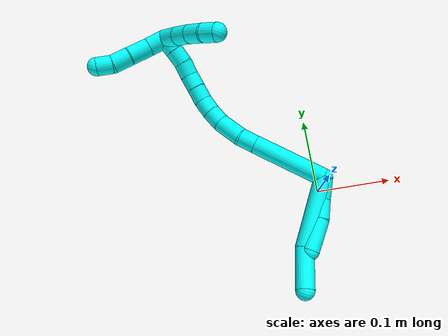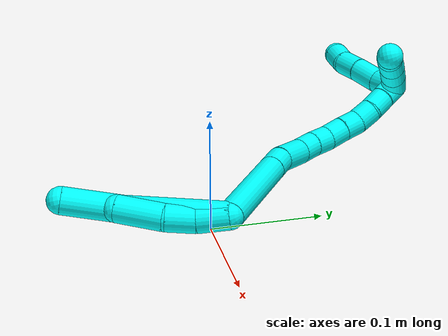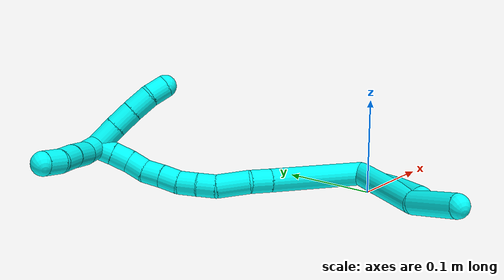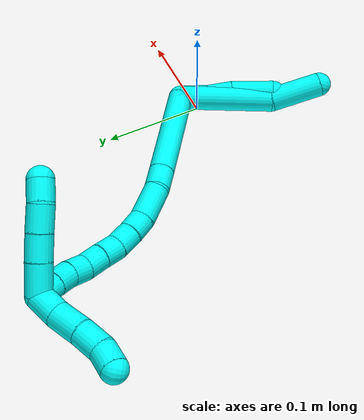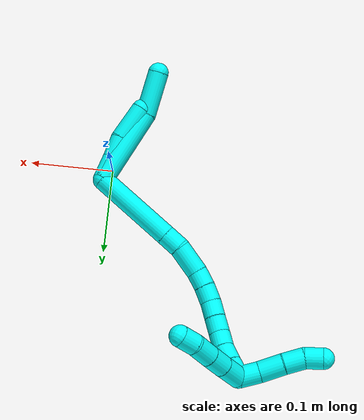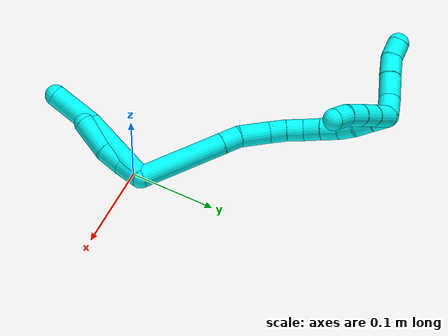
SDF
<sdf version="1.7">
 <world name="default">
  <model name="3">
   <static>0</static>
   <link name="3">
    <collision name="collision-cylinder-e_1_2_8">
     <pose>-0.013992 -0.002197 -0.046233 3.09411 -0.293578 -2.8231</pose>
     <geometry><cylinder><radius>0.0125</radius><length>0.096707</length></cylinder></geometry>
     <surface>
      <friction><ode><mu>1.16</mu><mu2>1.16</mu2><slip1>0</slip1><slip2>0</slip2></ode></friction>
      <contact><ode><kp>1e+06</kp><kd>1</kd><max_vel>0</max_vel><min_depth>0.001</min_depth></ode></contact>
     </surface>
    </collision>
    <visual name="visual-cylinder-e_1_2_8">
     <pose>-0.013992 -0.002197 -0.046233 3.09411 -0.293578 -2.8231</pose>
     <geometry><cylinder><radius>0.0125</radius><length>0.096707</length></cylinder></geometry>
     <material><ambient>0.003922 1 0.996078 1</ambient></material>
    </visual>
    <collision name="collision-cylinder-e_2_8_6">
     <pose>-0.040153 -0.012588 -0.11471 2.78867 -0.474202 -1.87014</pose>
     <geometry><cylinder><radius>0.0125</radius><length>0.053293</length></cylinder></geometry>
     <surface>
      <friction><ode><mu>1.16</mu><mu2>1.16</mu2><slip1>0</slip1><slip2>0</slip2></ode></friction>
      <contact><ode><kp>1e+06</kp><kd>1</kd><max_vel>0</max_vel><min_depth>0.001</min_depth></ode></contact>
     </surface>
    </collision>
    <visual name="visual-cylinder-e_2_8_6">
     <pose>-0.040153 -0.012588 -0.11471 2.78867 -0.474202 -1.87014</pose>
     <geometry><cylinder><radius>0.0125</radius><length>0.053293</length></cylinder></geometry>
     <material><ambient>0.003922 1 0.996078 1</ambient></material>
    </visual>
    <collision name="collision-cylinder-e_1_2_9">
     <pose>-0.002476 -0.002837 -0.014142 2.94363 -0.169981 -1.41813</pose>
     <geometry><cylinder><radius>0.0125</radius><length>0.02927</length></cylinder></geometry>
     <surface>
      <friction><ode><mu>1.16</mu><mu2>1.16</mu2><slip1>0</slip1><slip2>0</slip2></ode></friction>
      <contact><ode><kp>1e+06</kp><kd>1</kd><max_vel>0</max_vel><min_depth>0.001</min_depth></ode></contact>
     </surface>
    </collision>
    <visual name="visual-cylinder-e_1_2_9">
     <pose>-0.002476 -0.002837 -0.014142 2.94363 -0.169981 -1.41813</pose>
     <geometry><cylinder><radius>0.0125</radius><length>0.02927</length></cylinder></geometry>
     <material><ambient>0.003922 1 0.996078 1</ambient></material>
    </visual>
    <collision name="collision-cylinder-e_2_9_10">
     <pose>-0.009639 -0.008731 -0.04056 2.89753 -0.354913 -1.94199</pose>
     <geometry><cylinder><radius>0.0125</radius><length>0.026981</length></cylinder></geometry>
     <surface>
      <friction><ode><mu>1.16</mu><mu2>1.16</mu2><slip1>0</slip1><slip2>0</slip2></ode></friction>
      <contact><ode><kp>1e+06</kp><kd>1</kd><max_vel>0</max_vel><min_depth>0.001</min_depth></ode></contact>
     </surface>
    </collision>
    <visual name="visual-cylinder-e_2_9_10">
     <pose>-0.009639 -0.008731 -0.04056 2.89753 -0.354913 -1.94199</pose>
     <geometry><cylinder><radius>0.0125</radius><length>0.026981</length></cylinder></geometry>
     <material><ambient>0.003922 1 0.996078 1</ambient></material>
    </visual>
    <collision name="collision-cylinder-e_3_10_5">
     <pose>-0.022892 -0.011768 -0.072963 -3.14066 -0.402277 3.137</pose>
     <geometry><cylinder><radius>0.0125</radius><length>0.043749</length></cylinder></geometry>
     <surface>
      <friction><ode><mu>1.16</mu><mu2>1.16</mu2><slip1>0</slip1><slip2>0</slip2></ode></friction>
      <contact><ode><kp>1e+06</kp><kd>1</kd><max_vel>0</max_vel><min_depth>0.001</min_depth></ode></contact>
     </surface>
    </collision>
    <visual name="visual-cylinder-e_3_10_5">
     <pose>-0.022892 -0.011768 -0.072963 -3.14066 -0.402277 3.137</pose>
     <geometry><cylinder><radius>0.0125</radius><length>0.043749</length></cylinder></geometry>
     <material><ambient>0.003922 1 0.996078 1</ambient></material>
    </visual>
    <collision name="collision-cylinder-e_1_2_11">
     <pose>-0.001917 0.050299 0.007633 -1.42019 -0.037655 0.032373</pose>
     <geometry><cylinder><radius>0.0125</radius><length>0.101823</length></cylinder></geometry>
     <surface>
      <friction><ode><mu>1.16</mu><mu2>1.16</mu2><slip1>0</slip1><slip2>0</slip2></ode></friction>
      <contact><ode><kp>1e+06</kp><kd>1</kd><max_vel>0</max_vel><min_depth>0.001</min_depth></ode></contact>
     </surface>
    </collision>
    <visual name="visual-cylinder-e_1_2_11">
     <pose>-0.001917 0.050299 0.007633 -1.42019 -0.037655 0.032373</pose>
     <geometry><cylinder><radius>0.0125</radius><length>0.101823</length></cylinder></geometry>
     <material><ambient>0.003922 1 0.996078 1</ambient></material>
    </visual>
    <collision name="collision-cylinder-e_2_11_12">
     <pose>-0.004355 0.111609 0.01705 -1.41016 -0.046776 0.039809</pose>
     <geometry><cylinder><radius>0.0125</radius><length>0.022332</length></cylinder></geometry>
     <surface>
      <friction><ode><mu>1.16</mu><mu2>1.16</mu2><slip1>0</slip1><slip2>0</slip2></ode></friction>
      <contact><ode><kp>1e+06</kp><kd>1</kd><max_vel>0</max_vel><min_depth>0.001</min_depth></ode></contact>
     </surface>
    </collision>
    <visual name="visual-cylinder-e_2_11_12">
     <pose>-0.004355 0.111609 0.01705 -1.41016 -0.046776 0.039809</pose>
     <geometry><cylinder><radius>0.0125</radius><length>0.022332</length></cylinder></geometry>
     <material><ambient>0.003922 1 0.996078 1</ambient></material>
    </visual>
    <collision name="collision-cylinder-e_3_12_13">
     <pose>-0.002045 0.139373 0.024145 -1.26382 0.159804 -0.117099</pose>
     <geometry><cylinder><radius>0.0125</radius><length>0.035603</length></cylinder></geometry>
     <surface>
      <friction><ode><mu>1.16</mu><mu2>1.16</mu2><slip1>0</slip1><slip2>0</slip2></ode></friction>
      <contact><ode><kp>1e+06</kp><kd>1</kd><max_vel>0</max_vel><min_depth>0.001</min_depth></ode></contact>
     </surface>
    </collision>
    <visual name="visual-cylinder-e_3_12_13">
     <pose>-0.002045 0.139373 0.024145 -1.26382 0.159804 -0.117099</pose>
     <geometry><cylinder><radius>0.0125</radius><length>0.035603</length></cylinder></geometry>
     <material><ambient>0.003922 1 0.996078 1</ambient></material>
    </visual>
    <collision name="collision-cylinder-e_4_13_14">
     <pose>0.001029 0.164787 0.03448 -1.04519 0.024026 -0.01384</pose>
     <geometry><cylinder><radius>0.0125</radius><length>0.020032</length></cylinder></geometry>
     <surface>
      <friction><ode><mu>1.16</mu><mu2>1.16</mu2><slip1>0</slip1><slip2>0</slip2></ode></friction>
      <contact><ode><kp>1e+06</kp><kd>1</kd><max_vel>0</max_vel><min_depth>0.001</min_depth></ode></contact>
     </surface>
    </collision>
    <visual name="visual-cylinder-e_4_13_14">
     <pose>0.001029 0.164787 0.03448 -1.04519 0.024026 -0.01384</pose>
     <geometry><cylinder><radius>0.0125</radius><length>0.020032</length></cylinder></geometry>
     <material><ambient>0.003922 1 0.996078 1</ambient></material>
    </visual>
    <collision name="collision-cylinder-e_5_14_15">
     <pose>0.002041 0.181675 0.045299 -0.957023 0.076533 -0.039713</pose>
     <geometry><cylinder><radius>0.0125</radius><length>0.020183</length></cylinder></geometry>
     <surface>
      <friction><ode><mu>1.16</mu><mu2>1.16</mu2><slip1>0</slip1><slip2>0</slip2></ode></friction>
      <contact><ode><kp>1e+06</kp><kd>1</kd><max_vel>0</max_vel><min_depth>0.001</min_depth></ode></contact>
     </surface>
    </collision>
    <visual name="visual-cylinder-e_5_14_15">
     <pose>0.002041 0.181675 0.045299 -0.957023 0.076533 -0.039713</pose>
     <geometry><cylinder><radius>0.0125</radius><length>0.020183</length></cylinder></geometry>
     <material><ambient>0.003922 1 0.996078 1</ambient></material>
    </visual>
    <collision name="collision-cylinder-e_6_15_16">
     <pose>0.00197 0.196929 0.05817 -0.782022 -0.084246 0.034747</pose>
     <geometry><cylinder><radius>0.0125</radius><length>0.020018</length></cylinder></geometry>
     <surface>
      <friction><ode><mu>1.16</mu><mu2>1.16</mu2><slip1>0</slip1><slip2>0</slip2></ode></friction>
      <contact><ode><kp>1e+06</kp><kd>1</kd><max_vel>0</max_vel><min_depth>0.001</min_depth></ode></contact>
     </surface>
    </collision>
    <visual name="visual-cylinder-e_6_15_16">
     <pose>0.00197 0.196929 0.05817 -0.782022 -0.084246 0.034747</pose>
     <geometry><cylinder><radius>0.0125</radius><length>0.020018</length></cylinder></geometry>
     <material><ambient>0.003922 1 0.996078 1</ambient></material>
    </visual>
    <collision name="collision-cylinder-e_7_16_17">
     <pose>0.000843 0.211207 0.072132 -0.811243 -0.028439 0.012213</pose>
     <geometry><cylinder><radius>0.0125</radius><length>0.020005</length></cylinder></geometry>
     <surface>
      <friction><ode><mu>1.16</mu><mu2>1.16</mu2><slip1>0</slip1><slip2>0</slip2></ode></friction>
      <contact><ode><kp>1e+06</kp><kd>1</kd><max_vel>0</max_vel><min_depth>0.001</min_depth></ode></contact>
     </surface>
    </collision>
    <visual name="visual-cylinder-e_7_16_17">
     <pose>0.000843 0.211207 0.072132 -0.811243 -0.028439 0.012213</pose>
     <geometry><cylinder><radius>0.0125</radius><length>0.020005</length></cylinder></geometry>
     <material><ambient>0.003922 1 0.996078 1</ambient></material>
    </visual>
    <collision name="collision-cylinder-e_8_17_18">
     <pose>-0.002138 0.224686 0.086361 -0.703375 -0.273109 0.100757</pose>
     <geometry><cylinder><radius>0.0125</radius><length>0.020001</length></cylinder></geometry>
     <surface>
      <friction><ode><mu>1.16</mu><mu2>1.16</mu2><slip1>0</slip1><slip2>0</slip2></ode></friction>
      <contact><ode><kp>1e+06</kp><kd>1</kd><max_vel>0</max_vel><min_depth>0.001</min_depth></ode></contact>
     </surface>
    </collision>
    <visual name="visual-cylinder-e_8_17_18">
     <pose>-0.002138 0.224686 0.086361 -0.703375 -0.273109 0.100757</pose>
     <geometry><cylinder><radius>0.0125</radius><length>0.020001</length></cylinder></geometry>
     <material><ambient>0.003922 1 0.996078 1</ambient></material>
    </visual>
    <collision name="collision-cylinder-e_9_18_19">
     <pose>-0.007777 0.238335 0.09973 -0.888753 -0.298488 0.142942</pose>
     <geometry><cylinder><radius>0.0125</radius><length>0.020001</length></cylinder></geometry>
     <surface>
      <friction><ode><mu>1.16</mu><mu2>1.16</mu2><slip1>0</slip1><slip2>0</slip2></ode></friction>
      <contact><ode><kp>1e+06</kp><kd>1</kd><max_vel>0</max_vel><min_depth>0.001</min_depth></ode></contact>
     </surface>
    </collision>
    <visual name="visual-cylinder-e_9_18_19">
     <pose>-0.007777 0.238335 0.09973 -0.888753 -0.298488 0.142942</pose>
     <geometry><cylinder><radius>0.0125</radius><length>0.020001</length></cylinder></geometry>
     <material><ambient>0.003922 1 0.996078 1</ambient></material>
    </visual>
    <collision name="collision-cylinder-e_10_19_1">
     <pose>-0.013243 0.253578 0.11145 -0.941614 -0.255272 0.130454</pose>
     <geometry><cylinder><radius>0.0125</radius><length>0.020001</length></cylinder></geometry>
     <surface>
      <friction><ode><mu>1.16</mu><mu2>1.16</mu2><slip1>0</slip1><slip2>0</slip2></ode></friction>
      <contact><ode><kp>1e+06</kp><kd>1</kd><max_vel>0</max_vel><min_depth>0.001</min_depth></ode></contact>
     </surface>
    </collision>
    <visual name="visual-cylinder-e_10_19_1">
     <pose>-0.013243 0.253578 0.11145 -0.941614 -0.255272 0.130454</pose>
     <geometry><cylinder><radius>0.0125</radius><length>0.020001</length></cylinder></geometry>
     <material><ambient>0.003922 1 0.996078 1</ambient></material>
    </visual>
    <collision name="collision-cylinder-e_1_1_20">
     <pose>-0.024056 0.249554 0.120483 1.29619 -0.592544 -0.454303</pose>
     <geometry><cylinder><radius>0.0125</radius><length>0.029679</length></cylinder></geometry>
     <surface>
      <friction><ode><mu>1.16</mu><mu2>1.16</mu2><slip1>0</slip1><slip2>0</slip2></ode></friction>
      <contact><ode><kp>1e+06</kp><kd>1</kd><max_vel>0</max_vel><min_depth>0.001</min_depth></ode></contact>
     </surface>
    </collision>
    <visual name="visual-cylinder-e_1_1_20">
     <pose>-0.024056 0.249554 0.120483 1.29619 -0.592544 -0.454303</pose>
     <geometry><cylinder><radius>0.0125</radius><length>0.029679</length></cylinder></geometry>
     <material><ambient>0.003922 1 0.996078 1</ambient></material>
    </visual>
    <collision name="collision-cylinder-e_2_20_21">
     <pose>-0.038963 0.227701 0.126202 1.33712 -0.571959 -0.456441</pose>
     <geometry><cylinder><radius>0.0125</radius><length>0.024462</length></cylinder></geometry>
     <surface>
      <friction><ode><mu>1.16</mu><mu2>1.16</mu2><slip1>0</slip1><slip2>0</slip2></ode></friction>
      <contact><ode><kp>1e+06</kp><kd>1</kd><max_vel>0</max_vel><min_depth>0.001</min_depth></ode></contact>
     </surface>
    </collision>
    <visual name="visual-cylinder-e_2_20_21">
     <pose>-0.038963 0.227701 0.126202 1.33712 -0.571959 -0.456441</pose>
     <geometry><cylinder><radius>0.0125</radius><length>0.024462</length></cylinder></geometry>
     <material><ambient>0.003922 1 0.996078 1</ambient></material>
    </visual>
    <collision name="collision-cylinder-e_3_21_22">
     <pose>-0.052029 0.207104 0.130622 1.38064 -0.538646 -0.448273</pose>
     <geometry><cylinder><radius>0.0125</radius><length>0.025129</length></cylinder></geometry>
     <surface>
      <friction><ode><mu>1.16</mu><mu2>1.16</mu2><slip1>0</slip1><slip2>0</slip2></ode></friction>
      <contact><ode><kp>1e+06</kp><kd>1</kd><max_vel>0</max_vel><min_depth>0.001</min_depth></ode></contact>
     </surface>
    </collision>
    <visual name="visual-cylinder-e_3_21_22">
     <pose>-0.052029 0.207104 0.130622 1.38064 -0.538646 -0.448273</pose>
     <geometry><cylinder><radius>0.0125</radius><length>0.025129</length></cylinder></geometry>
     <material><ambient>0.003922 1 0.996078 1</ambient></material>
    </visual>
    <collision name="collision-cylinder-e_4_22_4">
     <pose>-0.061663 0.1869 0.134862 1.34568 -0.31271 -0.249936</pose>
     <geometry><cylinder><radius>0.0125</radius><length>0.02073</length></cylinder></geometry>
     <surface>
      <friction><ode><mu>1.16</mu><mu2>1.16</mu2><slip1>0</slip1><slip2>0</slip2></ode></friction>
      <contact><ode><kp>1e+06</kp><kd>1</kd><max_vel>0</max_vel><min_depth>0.001</min_depth></ode></contact>
     </surface>
    </collision>
    <visual name="visual-cylinder-e_4_22_4">
     <pose>-0.061663 0.1869 0.134862 1.34568 -0.31271 -0.249936</pose>
     <geometry><cylinder><radius>0.0125</radius><length>0.02073</length></cylinder></geometry>
     <material><ambient>0.003922 1 0.996078 1</ambient></material>
    </visual>
    <collision name="collision-cylinder-e_1_1_23">
     <pose>-0.018876 0.269556 0.108499 -2.38547 -0.255798 0.626289</pose>
     <geometry><cylinder><radius>0.0125</radius><length>0.024569</length></cylinder></geometry>
     <surface>
      <friction><ode><mu>1.16</mu><mu2>1.16</mu2><slip1>0</slip1><slip2>0</slip2></ode></friction>
      <contact><ode><kp>1e+06</kp><kd>1</kd><max_vel>0</max_vel><min_depth>0.001</min_depth></ode></contact>
     </surface>
    </collision>
    <visual name="visual-cylinder-e_1_1_23">
     <pose>-0.018876 0.269556 0.108499 -2.38547 -0.255798 0.626289</pose>
     <geometry><cylinder><radius>0.0125</radius><length>0.024569</length></cylinder></geometry>
     <material><ambient>0.003922 1 0.996078 1</ambient></material>
    </visual>
    <collision name="collision-cylinder-e_2_23_24">
     <pose>-0.028561 0.286348 0.089847 -2.42943 -0.46167 1.12708</pose>
     <geometry><cylinder><radius>0.0125</radius><length>0.029528</length></cylinder></geometry>
     <surface>
      <friction><ode><mu>1.16</mu><mu2>1.16</mu2><slip1>0</slip1><slip2>0</slip2></ode></friction>
      <contact><ode><kp>1e+06</kp><kd>1</kd><max_vel>0</max_vel><min_depth>0.001</min_depth></ode></contact>
     </surface>
    </collision>
    <visual name="visual-cylinder-e_2_23_24">
     <pose>-0.028561 0.286348 0.089847 -2.42943 -0.46167 1.12708</pose>
     <geometry><cylinder><radius>0.0125</radius><length>0.029528</length></cylinder></geometry>
     <material><ambient>0.003922 1 0.996078 1</ambient></material>
    </visual>
    <collision name="collision-cylinder-e_3_24_25">
     <pose>-0.039563 0.302746 0.071411 -2.39755 -0.368554 0.891293</pose>
     <geometry><cylinder><radius>0.0125</radius><length>0.024566</length></cylinder></geometry>
     <surface>
      <friction><ode><mu>1.16</mu><mu2>1.16</mu2><slip1>0</slip1><slip2>0</slip2></ode></friction>
      <contact><ode><kp>1e+06</kp><kd>1</kd><max_vel>0</max_vel><min_depth>0.001</min_depth></ode></contact>
     </surface>
    </collision>
    <visual name="visual-cylinder-e_3_24_25">
     <pose>-0.039563 0.302746 0.071411 -2.39755 -0.368554 0.891293</pose>
     <geometry><cylinder><radius>0.0125</radius><length>0.024566</length></cylinder></geometry>
     <material><ambient>0.003922 1 0.996078 1</ambient></material>
    </visual>
    <collision name="collision-cylinder-e_4_25_3">
     <pose>-0.047834 0.319273 0.058271 -2.06381 -0.368767 0.604702</pose>
     <geometry><cylinder><radius>0.0125</radius><length>0.021337</length></cylinder></geometry>
     <surface>
      <friction><ode><mu>1.16</mu><mu2>1.16</mu2><slip1>0</slip1><slip2>0</slip2></ode></friction>
      <contact><ode><kp>1e+06</kp><kd>1</kd><max_vel>0</max_vel><min_depth>0.001</min_depth></ode></contact>
     </surface>
    </collision>
    <visual name="visual-cylinder-e_4_25_3">
     <pose>-0.047834 0.319273 0.058271 -2.06381 -0.368767 0.604702</pose>
     <geometry><cylinder><radius>0.0125</radius><length>0.021337</length></cylinder></geometry>
     <material><ambient>0.003922 1 0.996078 1</ambient></material>
    </visual>
    <collision name="collision-sphere-3">
     <pose>-0.051679 0.328039 0.053561 0 -0 0</pose>
     <geometry><sphere><radius>0.0125</radius></sphere></geometry>
     <surface>
      <friction><ode><mu>1.16</mu><mu2>1.16</mu2><slip1>0</slip1><slip2>0</slip2></ode></friction>
      <contact><ode><kp>1e+06</kp><kd>1</kd><max_vel>0</max_vel><min_depth>0.001</min_depth></ode></contact>
     </surface>
    </collision>
    <visual name="visual-sphere-3">
     <pose>-0.051679 0.328039 0.053561 0 -0 0</pose>
     <geometry><sphere><radius>0.0125</radius></sphere></geometry>
     <material><ambient>0.003922 1 0.996078 1</ambient></material>
    </visual>
    <collision name="collision-sphere-25">
     <pose>-0.043988 0.310506 0.062981 0 -0 0</pose>
     <geometry><sphere><radius>0.0125</radius></sphere></geometry>
     <surface>
      <friction><ode><mu>1.16</mu><mu2>1.16</mu2><slip1>0</slip1><slip2>0</slip2></ode></friction>
      <contact><ode><kp>1e+06</kp><kd>1</kd><max_vel>0</max_vel><min_depth>0.001</min_depth></ode></contact>
     </surface>
    </collision>
    <visual name="visual-sphere-25">
     <pose>-0.043988 0.310506 0.062981 0 -0 0</pose>
     <geometry><sphere><radius>0.0125</radius></sphere></geometry>
     <material><ambient>0.003922 1 0.996078 1</ambient></material>
    </visual>
    <collision name="collision-sphere-24">
     <pose>-0.035138 0.294986 0.079841 0 -0 0</pose>
     <geometry><sphere><radius>0.0125</radius></sphere></geometry>
     <surface>
      <friction><ode><mu>1.16</mu><mu2>1.16</mu2><slip1>0</slip1><slip2>0</slip2></ode></friction>
      <contact><ode><kp>1e+06</kp><kd>1</kd><max_vel>0</max_vel><min_depth>0.001</min_depth></ode></contact>
     </surface>
    </collision>
    <visual name="visual-sphere-24">
     <pose>-0.035138 0.294986 0.079841 0 -0 0</pose>
     <geometry><sphere><radius>0.0125</radius></sphere></geometry>
     <material><ambient>0.003922 1 0.996078 1</ambient></material>
    </visual>
    <collision name="collision-sphere-23">
     <pose>-0.021984 0.27771 0.099853 0 -0 0</pose>
     <geometry><sphere><radius>0.0125</radius></sphere></geometry>
     <surface>
      <friction><ode><mu>1.16</mu><mu2>1.16</mu2><slip1>0</slip1><slip2>0</slip2></ode></friction>
      <contact><ode><kp>1e+06</kp><kd>1</kd><max_vel>0</max_vel><min_depth>0.001</min_depth></ode></contact>
     </surface>
    </collision>
    <visual name="visual-sphere-23">
     <pose>-0.021984 0.27771 0.099853 0 -0 0</pose>
     <geometry><sphere><radius>0.0125</radius></sphere></geometry>
     <material><ambient>0.003922 1 0.996078 1</ambient></material>
    </visual>
    <collision name="collision-sphere-4">
     <pose>-0.064852 0.177286 0.137064 0 -0 0</pose>
     <geometry><sphere><radius>0.0125</radius></sphere></geometry>
     <surface>
      <friction><ode><mu>1.16</mu><mu2>1.16</mu2><slip1>0</slip1><slip2>0</slip2></ode></friction>
      <contact><ode><kp>1e+06</kp><kd>1</kd><max_vel>0</max_vel><min_depth>0.001</min_depth></ode></contact>
     </surface>
    </collision>
    <visual name="visual-sphere-4">
     <pose>-0.064852 0.177286 0.137064 0 -0 0</pose>
     <geometry><sphere><radius>0.0125</radius></sphere></geometry>
     <material><ambient>0.003922 1 0.996078 1</ambient></material>
    </visual>
    <collision name="collision-sphere-22">
     <pose>-0.058475 0.196513 0.132661 0 -0 0</pose>
     <geometry><sphere><radius>0.0125</radius></sphere></geometry>
     <surface>
      <friction><ode><mu>1.16</mu><mu2>1.16</mu2><slip1>0</slip1><slip2>0</slip2></ode></friction>
      <contact><ode><kp>1e+06</kp><kd>1</kd><max_vel>0</max_vel><min_depth>0.001</min_depth></ode></contact>
     </surface>
    </collision>
    <visual name="visual-sphere-22">
     <pose>-0.058475 0.196513 0.132661 0 -0 0</pose>
     <geometry><sphere><radius>0.0125</radius></sphere></geometry>
     <material><ambient>0.003922 1 0.996078 1</ambient></material>
    </visual>
    <collision name="collision-sphere-21">
     <pose>-0.045584 0.217696 0.128584 0 -0 0</pose>
     <geometry><sphere><radius>0.0125</radius></sphere></geometry>
     <surface>
      <friction><ode><mu>1.16</mu><mu2>1.16</mu2><slip1>0</slip1><slip2>0</slip2></ode></friction>
      <contact><ode><kp>1e+06</kp><kd>1</kd><max_vel>0</max_vel><min_depth>0.001</min_depth></ode></contact>
     </surface>
    </collision>
    <visual name="visual-sphere-21">
     <pose>-0.045584 0.217696 0.128584 0 -0 0</pose>
     <geometry><sphere><radius>0.0125</radius></sphere></geometry>
     <material><ambient>0.003922 1 0.996078 1</ambient></material>
    </visual>
    <collision name="collision-sphere-20">
     <pose>-0.032343 0.237705 0.123821 0 -0 0</pose>
     <geometry><sphere><radius>0.0125</radius></sphere></geometry>
     <surface>
      <friction><ode><mu>1.16</mu><mu2>1.16</mu2><slip1>0</slip1><slip2>0</slip2></ode></friction>
      <contact><ode><kp>1e+06</kp><kd>1</kd><max_vel>0</max_vel><min_depth>0.001</min_depth></ode></contact>
     </surface>
    </collision>
    <visual name="visual-sphere-20">
     <pose>-0.032343 0.237705 0.123821 0 -0 0</pose>
     <geometry><sphere><radius>0.0125</radius></sphere></geometry>
     <material><ambient>0.003922 1 0.996078 1</ambient></material>
    </visual>
    <collision name="collision-sphere-5">
     <pose>-0.031456 -0.01175 -0.093091 0 -0 0</pose>
     <geometry><sphere><radius>0.0125</radius></sphere></geometry>
     <surface>
      <friction><ode><mu>1.16</mu><mu2>1.16</mu2><slip1>0</slip1><slip2>0</slip2></ode></friction>
      <contact><ode><kp>1e+06</kp><kd>1</kd><max_vel>0</max_vel><min_depth>0.001</min_depth></ode></contact>
     </surface>
    </collision>
    <visual name="visual-sphere-5">
     <pose>-0.031456 -0.01175 -0.093091 0 -0 0</pose>
     <geometry><sphere><radius>0.0125</radius></sphere></geometry>
     <material><ambient>0.003922 1 0.996078 1</ambient></material>
    </visual>
    <collision name="collision-sphere-10">
     <pose>-0.014328 -0.011787 -0.052835 0 -0 0</pose>
     <geometry><sphere><radius>0.0125</radius></sphere></geometry>
     <surface>
      <friction><ode><mu>1.16</mu><mu2>1.16</mu2><slip1>0</slip1><slip2>0</slip2></ode></friction>
      <contact><ode><kp>1e+06</kp><kd>1</kd><max_vel>0</max_vel><min_depth>0.001</min_depth></ode></contact>
     </surface>
    </collision>
    <visual name="visual-sphere-10">
     <pose>-0.014328 -0.011787 -0.052835 0 -0 0</pose>
     <geometry><sphere><radius>0.0125</radius></sphere></geometry>
     <material><ambient>0.003922 1 0.996078 1</ambient></material>
    </visual>
    <collision name="collision-sphere-6">
     <pose>-0.05232 -0.020782 -0.136955 0 -0 0</pose>
     <geometry><sphere><radius>0.0125</radius></sphere></geometry>
     <surface>
      <friction><ode><mu>1.16</mu><mu2>1.16</mu2><slip1>0</slip1><slip2>0</slip2></ode></friction>
      <contact><ode><kp>1e+06</kp><kd>1</kd><max_vel>0</max_vel><min_depth>0.001</min_depth></ode></contact>
     </surface>
    </collision>
    <visual name="visual-sphere-6">
     <pose>-0.05232 -0.020782 -0.136955 0 -0 0</pose>
     <geometry><sphere><radius>0.0125</radius></sphere></geometry>
     <material><ambient>0.003922 1 0.996078 1</ambient></material>
    </visual>
    <collision name="collision-sphere-9">
     <pose>-0.004951 -0.005674 -0.028285 0 -0 0</pose>
     <geometry><sphere><radius>0.0125</radius></sphere></geometry>
     <surface>
      <friction><ode><mu>1.16</mu><mu2>1.16</mu2><slip1>0</slip1><slip2>0</slip2></ode></friction>
      <contact><ode><kp>1e+06</kp><kd>1</kd><max_vel>0</max_vel><min_depth>0.001</min_depth></ode></contact>
     </surface>
    </collision>
    <visual name="visual-sphere-9">
     <pose>-0.004951 -0.005674 -0.028285 0 -0 0</pose>
     <geometry><sphere><radius>0.0125</radius></sphere></geometry>
     <material><ambient>0.003922 1 0.996078 1</ambient></material>
    </visual>
    <collision name="collision-sphere-2">
     <geometry><sphere><radius>0.0125</radius></sphere></geometry>
     <surface>
      <friction><ode><mu>1.16</mu><mu2>1.16</mu2><slip1>0</slip1><slip2>0</slip2></ode></friction>
      <contact><ode><kp>1e+06</kp><kd>1</kd><max_vel>0</max_vel><min_depth>0.001</min_depth></ode></contact>
     </surface>
    </collision>
    <visual name="visual-sphere-2">
     <geometry><sphere><radius>0.0125</radius></sphere></geometry>
     <material><ambient>0.003922 1 0.996078 1</ambient></material>
    </visual>
    <collision name="collision-sphere-19">
     <pose>-0.010718 0.245755 0.105756 0 -0 0</pose>
     <geometry><sphere><radius>0.0125</radius></sphere></geometry>
     <surface>
      <friction><ode><mu>1.16</mu><mu2>1.16</mu2><slip1>0</slip1><slip2>0</slip2></ode></friction>
      <contact><ode><kp>1e+06</kp><kd>1</kd><max_vel>0</max_vel><min_depth>0.001</min_depth></ode></contact>
     </surface>
    </collision>
    <visual name="visual-sphere-19">
     <pose>-0.010718 0.245755 0.105756 0 -0 0</pose>
     <geometry><sphere><radius>0.0125</radius></sphere></geometry>
     <material><ambient>0.003922 1 0.996078 1</ambient></material>
    </visual>
    <collision name="collision-sphere-8">
     <pose>-0.027985 -0.004394 -0.092465 0 -0 0</pose>
     <geometry><sphere><radius>0.0125</radius></sphere></geometry>
     <surface>
      <friction><ode><mu>1.16</mu><mu2>1.16</mu2><slip1>0</slip1><slip2>0</slip2></ode></friction>
      <contact><ode><kp>1e+06</kp><kd>1</kd><max_vel>0</max_vel><min_depth>0.001</min_depth></ode></contact>
     </surface>
    </collision>
    <visual name="visual-sphere-8">
     <pose>-0.027985 -0.004394 -0.092465 0 -0 0</pose>
     <geometry><sphere><radius>0.0125</radius></sphere></geometry>
     <material><ambient>0.003922 1 0.996078 1</ambient></material>
    </visual>
    <collision name="collision-sphere-11">
     <pose>-0.003833 0.100599 0.015266 0 -0 0</pose>
     <geometry><sphere><radius>0.0125</radius></sphere></geometry>
     <surface>
      <friction><ode><mu>1.16</mu><mu2>1.16</mu2><slip1>0</slip1><slip2>0</slip2></ode></friction>
      <contact><ode><kp>1e+06</kp><kd>1</kd><max_vel>0</max_vel><min_depth>0.001</min_depth></ode></contact>
     </surface>
    </collision>
    <visual name="visual-sphere-11">
     <pose>-0.003833 0.100599 0.015266 0 -0 0</pose>
     <geometry><sphere><radius>0.0125</radius></sphere></geometry>
     <material><ambient>0.003922 1 0.996078 1</ambient></material>
    </visual>
    <collision name="collision-sphere-12">
     <pose>-0.004877 0.122619 0.018834 0 -0 0</pose>
     <geometry><sphere><radius>0.0125</radius></sphere></geometry>
     <surface>
      <friction><ode><mu>1.16</mu><mu2>1.16</mu2><slip1>0</slip1><slip2>0</slip2></ode></friction>
      <contact><ode><kp>1e+06</kp><kd>1</kd><max_vel>0</max_vel><min_depth>0.001</min_depth></ode></contact>
     </surface>
    </collision>
    <visual name="visual-sphere-12">
     <pose>-0.004877 0.122619 0.018834 0 -0 0</pose>
     <geometry><sphere><radius>0.0125</radius></sphere></geometry>
     <material><ambient>0.003922 1 0.996078 1</ambient></material>
    </visual>
    <collision name="collision-sphere-13">
     <pose>0.000788 0.156126 0.029456 0 -0 0</pose>
     <geometry><sphere><radius>0.0125</radius></sphere></geometry>
     <surface>
      <friction><ode><mu>1.16</mu><mu2>1.16</mu2><slip1>0</slip1><slip2>0</slip2></ode></friction>
      <contact><ode><kp>1e+06</kp><kd>1</kd><max_vel>0</max_vel><min_depth>0.001</min_depth></ode></contact>
     </surface>
    </collision>
    <visual name="visual-sphere-13">
     <pose>0.000788 0.156126 0.029456 0 -0 0</pose>
     <geometry><sphere><radius>0.0125</radius></sphere></geometry>
     <material><ambient>0.003922 1 0.996078 1</ambient></material>
    </visual>
    <collision name="collision-sphere-14">
     <pose>0.001269 0.173449 0.039504 0 -0 0</pose>
     <geometry><sphere><radius>0.0125</radius></sphere></geometry>
     <surface>
      <friction><ode><mu>1.16</mu><mu2>1.16</mu2><slip1>0</slip1><slip2>0</slip2></ode></friction>
      <contact><ode><kp>1e+06</kp><kd>1</kd><max_vel>0</max_vel><min_depth>0.001</min_depth></ode></contact>
     </surface>
    </collision>
    <visual name="visual-sphere-14">
     <pose>0.001269 0.173449 0.039504 0 -0 0</pose>
     <geometry><sphere><radius>0.0125</radius></sphere></geometry>
     <material><ambient>0.003922 1 0.996078 1</ambient></material>
    </visual>
    <collision name="collision-sphere-15">
     <pose>0.002812 0.1899 0.051094 0 -0 0</pose>
     <geometry><sphere><radius>0.0125</radius></sphere></geometry>
     <surface>
      <friction><ode><mu>1.16</mu><mu2>1.16</mu2><slip1>0</slip1><slip2>0</slip2></ode></friction>
      <contact><ode><kp>1e+06</kp><kd>1</kd><max_vel>0</max_vel><min_depth>0.001</min_depth></ode></contact>
     </surface>
    </collision>
    <visual name="visual-sphere-15">
     <pose>0.002812 0.1899 0.051094 0 -0 0</pose>
     <geometry><sphere><radius>0.0125</radius></sphere></geometry>
     <material><ambient>0.003922 1 0.996078 1</ambient></material>
    </visual>
    <collision name="collision-sphere-16">
     <pose>0.001128 0.203957 0.065247 0 -0 0</pose>
     <geometry><sphere><radius>0.0125</radius></sphere></geometry>
     <surface>
      <friction><ode><mu>1.16</mu><mu2>1.16</mu2><slip1>0</slip1><slip2>0</slip2></ode></friction>
      <contact><ode><kp>1e+06</kp><kd>1</kd><max_vel>0</max_vel><min_depth>0.001</min_depth></ode></contact>
     </surface>
    </collision>
    <visual name="visual-sphere-16">
     <pose>0.001128 0.203957 0.065247 0 -0 0</pose>
     <geometry><sphere><radius>0.0125</radius></sphere></geometry>
     <material><ambient>0.003922 1 0.996078 1</ambient></material>
    </visual>
    <collision name="collision-sphere-17">
     <pose>0.000559 0.218458 0.079016 0 -0 0</pose>
     <geometry><sphere><radius>0.0125</radius></sphere></geometry>
     <surface>
      <friction><ode><mu>1.16</mu><mu2>1.16</mu2><slip1>0</slip1><slip2>0</slip2></ode></friction>
      <contact><ode><kp>1e+06</kp><kd>1</kd><max_vel>0</max_vel><min_depth>0.001</min_depth></ode></contact>
     </surface>
    </collision>
    <visual name="visual-sphere-17">
     <pose>0.000559 0.218458 0.079016 0 -0 0</pose>
     <geometry><sphere><radius>0.0125</radius></sphere></geometry>
     <material><ambient>0.003922 1 0.996078 1</ambient></material>
    </visual>
    <collision name="collision-sphere-18">
     <pose>-0.004836 0.230915 0.093705 0 -0 0</pose>
     <geometry><sphere><radius>0.0125</radius></sphere></geometry>
     <surface>
      <friction><ode><mu>1.16</mu><mu2>1.16</mu2><slip1>0</slip1><slip2>0</slip2></ode></friction>
      <contact><ode><kp>1e+06</kp><kd>1</kd><max_vel>0</max_vel><min_depth>0.001</min_depth></ode></contact>
     </surface>
    </collision>
    <visual name="visual-sphere-18">
     <pose>-0.004836 0.230915 0.093705 0 -0 0</pose>
     <geometry><sphere><radius>0.0125</radius></sphere></geometry>
     <material><ambient>0.003922 1 0.996078 1</ambient></material>
    </visual>
    <collision name="collision-sphere-1">
     <pose>-0.015768 0.261402 0.117145 0 -0 0</pose>
     <geometry><sphere><radius>0.0125</radius></sphere></geometry>
     <surface>
      <friction><ode><mu>1.16</mu><mu2>1.16</mu2><slip1>0</slip1><slip2>0</slip2></ode></friction>
      <contact><ode><kp>1e+06</kp><kd>1</kd><max_vel>0</max_vel><min_depth>0.001</min_depth></ode></contact>
     </surface>
    </collision>
    <visual name="visual-sphere-1">
     <pose>-0.015768 0.261402 0.117145 0 -0 0</pose>
     <geometry><sphere><radius>0.0125</radius></sphere></geometry>
     <material><ambient>0.003922 1 0.996078 1</ambient></material>
    </visual>
    <inertial>
     <pose>-0.017453 0.12228 0.023939 0 -0 0</pose>
     <mass>0.75</mass>
     <inertia><ixx>-1.3e-05</ixx><ixy>0</ixy><ixz>0</ixz><iyy>9.6e-05</iyy><iyz>0</iyz><izz>-6e-05</izz></inertia>
    </inertial>
   </link>
   <pose>0.009226 0.014935 0.015899 -0.255561 1.22768 0.832137</pose>
  </model>
 </world>
</sdf>
